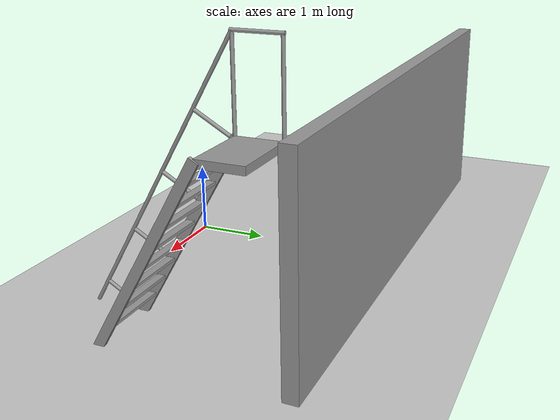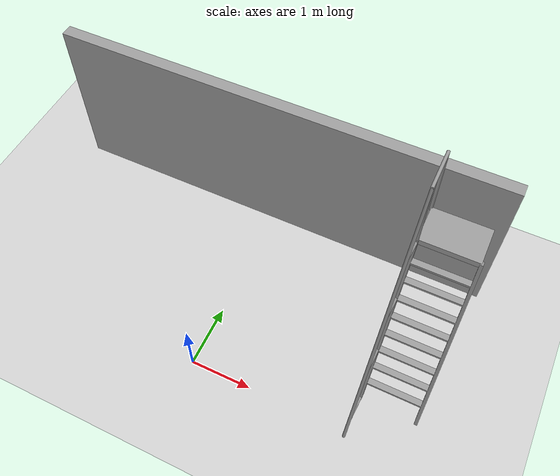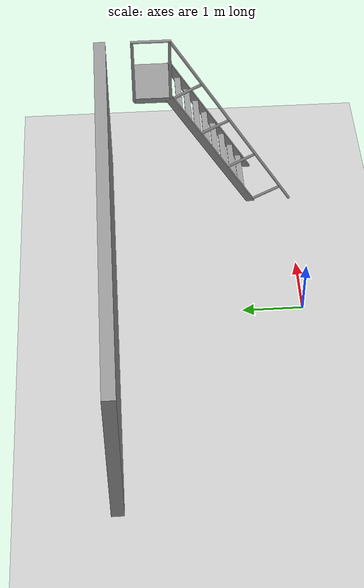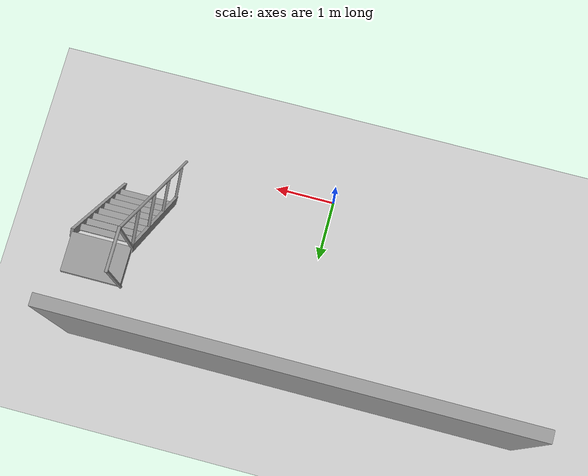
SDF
<sdf version="1.6">
 <world name="default">
  <light name="sun" type="directional">
   <pose>0 0 10 0 -0 0</pose>
   <diffuse>0.8 0.8 0.8 1</diffuse>
   <specular>0.2 0.2 0.2 1</specular>
   <attenuation>
    <range>1000</range>
    <constant>0.9</constant>
    <linear>0.01</linear>
    <quadratic>0.001</quadratic>
   </attenuation>
   <direction>-0.5 0.1 -0.9</direction>
  </light>
  <model name="ground_plane">
   <static>1</static>
   <link name="link">
    <collision name="collision">
     <geometry><plane><normal>0 0 1</normal><size>100 100</size></plane></geometry>
     <surface>
      <contact><collide_bitmask>65535</collide_bitmask></contact>
      <friction><ode><mu>100</mu><mu2>50</mu2></ode></friction>
     </surface>
    </collision>
    <visual name="visual">
     <cast_shadows>0</cast_shadows>
     <geometry><plane><normal>0 0 1</normal><size>100 100</size></plane></geometry>
     <material>
      <script><uri>file://media/materials/scripts/gazebo.material</uri><name>Gazebo/Grey</name></script>
     </material>
    </visual>
   </link>
  </model>
  <gravity>0 0 -9.8</gravity>
  <magnetic_field>6e-06 2.3e-05 -4.2e-05</magnetic_field>
  <atmosphere type="adiabatic"/>
  <physics name="default_physics" default="0" type="ode">
   <max_step_size>0.001</max_step_size>
   <real_time_factor>1</real_time_factor>
   <real_time_update_rate>1000</real_time_update_rate>
  </physics>
  <scene><ambient>0.4 0.4 0.4 1</ambient><background>0.7 0.7 0.7 1</background><shadows>1</shadows></scene>
  <audio><device>default</device></audio>
  <spherical_coordinates>
   <surface_model>EARTH_WGS84</surface_model>
   <latitude_deg>0</latitude_deg>
   <longitude_deg>0</longitude_deg>
   <elevation>0</elevation>
   <heading_deg>0</heading_deg>
  </spherical_coordinates>
  <model name="grey_wall">
   <static>1</static>
   <link name="link">
    <pose>0 0 1.4 0 -0 0</pose>
    <collision name="collision"><geometry><box><size>7.5 0.2 2.8</size></box></geometry></collision>
    <visual name="visual">
     <cast_shadows>0</cast_shadows>
     <geometry><box><size>7.5 0.2 2.8</size></box></geometry>
     <material>
      <script>
       <uri>model://grey_wall/materials/scripts</uri>
       <uri>model://grey_wall/materials/textures</uri>
       <name>vrc/grey_wall</name>
      </script>
     </material>
    </visual>
   </link>
   <pose>-0.061412 3.1632 0 0 -0 0</pose>
  </model>
  <model name="ladder_60deg_1rails">
   <static>1</static>
   <link name="step0">
    <pose>0 0.15396 0.266667 0 -0 0</pose>
    <inertial>
     <mass>9.75482</mass>
     <inertia>
      <ixx>0.00957124</ixx>
      <iyy>0.65963</iyy>
      <izz>0.666842</izz>
      <ixy>0</ixy>
      <ixz>0</ixz>
      <iyz>0</iyz>
     </inertia>
    </inertial>
    <collision name="collision"><geometry><box><size>0.9 0.1016 0.0381</size></box></geometry></collision>
    <visual name="visual">
     <geometry><box><size>0.9 0.1016 0.0381</size></box></geometry>
     <material>
      <script><uri>file://media/materials/scripts/gazebo.material</uri><name>Gazebo/Grey</name></script>
     </material>
    </visual>
   </link>
   <link name="step1">
    <pose>0 0.30792 0.533333 0 -0 0</pose>
    <inertial>
     <mass>9.75482</mass>
     <inertia>
      <ixx>0.00957124</ixx>
      <iyy>0.65963</iyy>
      <izz>0.666842</izz>
      <ixy>0</ixy>
      <ixz>0</ixz>
      <iyz>0</iyz>
     </inertia>
    </inertial>
    <collision name="collision"><geometry><box><size>0.9 0.1016 0.0381</size></box></geometry></collision>
    <visual name="visual">
     <geometry><box><size>0.9 0.1016 0.0381</size></box></geometry>
     <material>
      <script><uri>file://media/materials/scripts/gazebo.material</uri><name>Gazebo/Grey</name></script>
     </material>
    </visual>
   </link>
   <link name="step2">
    <pose>0 0.46188 0.8 0 -0 0</pose>
    <inertial>
     <mass>9.75482</mass>
     <inertia>
      <ixx>0.00957124</ixx>
      <iyy>0.65963</iyy>
      <izz>0.666842</izz>
      <ixy>0</ixy>
      <ixz>0</ixz>
      <iyz>0</iyz>
     </inertia>
    </inertial>
    <collision name="collision"><geometry><box><size>0.9 0.1016 0.0381</size></box></geometry></collision>
    <visual name="visual">
     <geometry><box><size>0.9 0.1016 0.0381</size></box></geometry>
     <material>
      <script><uri>file://media/materials/scripts/gazebo.material</uri><name>Gazebo/Grey</name></script>
     </material>
    </visual>
   </link>
   <link name="step3">
    <pose>0 0.61584 1.06667 0 -0 0</pose>
    <inertial>
     <mass>9.75482</mass>
     <inertia>
      <ixx>0.00957124</ixx>
      <iyy>0.65963</iyy>
      <izz>0.666842</izz>
      <ixy>0</ixy>
      <ixz>0</ixz>
      <iyz>0</iyz>
     </inertia>
    </inertial>
    <collision name="collision"><geometry><box><size>0.9 0.1016 0.0381</size></box></geometry></collision>
    <visual name="visual">
     <geometry><box><size>0.9 0.1016 0.0381</size></box></geometry>
     <material>
      <script><uri>file://media/materials/scripts/gazebo.material</uri><name>Gazebo/Grey</name></script>
     </material>
    </visual>
   </link>
   <link name="step4">
    <pose>0 0.7698 1.33333 0 -0 0</pose>
    <inertial>
     <mass>9.75482</mass>
     <inertia>
      <ixx>0.00957124</ixx>
      <iyy>0.65963</iyy>
      <izz>0.666842</izz>
      <ixy>0</ixy>
      <ixz>0</ixz>
      <iyz>0</iyz>
     </inertia>
    </inertial>
    <collision name="collision"><geometry><box><size>0.9 0.1016 0.0381</size></box></geometry></collision>
    <visual name="visual">
     <geometry><box><size>0.9 0.1016 0.0381</size></box></geometry>
     <material>
      <script><uri>file://media/materials/scripts/gazebo.material</uri><name>Gazebo/Grey</name></script>
     </material>
    </visual>
   </link>
   <link name="step5">
    <pose>0 0.92376 1.6 0 -0 0</pose>
    <inertial>
     <mass>9.75482</mass>
     <inertia>
      <ixx>0.00957124</ixx>
      <iyy>0.65963</iyy>
      <izz>0.666842</izz>
      <ixy>0</ixy>
      <ixz>0</ixz>
      <iyz>0</iyz>
     </inertia>
    </inertial>
    <collision name="collision"><geometry><box><size>0.9 0.1016 0.0381</size></box></geometry></collision>
    <visual name="visual">
     <geometry><box><size>0.9 0.1016 0.0381</size></box></geometry>
     <material>
      <script><uri>file://media/materials/scripts/gazebo.material</uri><name>Gazebo/Grey</name></script>
     </material>
    </visual>
   </link>
   <link name="step6">
    <pose>0 1.07772 1.86667 0 -0 0</pose>
    <inertial>
     <mass>9.75482</mass>
     <inertia>
      <ixx>0.00957124</ixx>
      <iyy>0.65963</iyy>
      <izz>0.666842</izz>
      <ixy>0</ixy>
      <ixz>0</ixz>
      <iyz>0</iyz>
     </inertia>
    </inertial>
    <collision name="collision"><geometry><box><size>0.9 0.1016 0.0381</size></box></geometry></collision>
    <visual name="visual">
     <geometry><box><size>0.9 0.1016 0.0381</size></box></geometry>
     <material>
      <script><uri>file://media/materials/scripts/gazebo.material</uri><name>Gazebo/Grey</name></script>
     </material>
    </visual>
   </link>
   <link name="step7">
    <pose>0 1.23168 2.13333 0 -0 0</pose>
    <inertial>
     <mass>9.75482</mass>
     <inertia>
      <ixx>0.00957124</ixx>
      <iyy>0.65963</iyy>
      <izz>0.666842</izz>
      <ixy>0</ixy>
      <ixz>0</ixz>
      <iyz>0</iyz>
     </inertia>
    </inertial>
    <collision name="collision"><geometry><box><size>0.9 0.1016 0.0381</size></box></geometry></collision>
    <visual name="visual">
     <geometry><box><size>0.9 0.1016 0.0381</size></box></geometry>
     <material>
      <script><uri>file://media/materials/scripts/gazebo.material</uri><name>Gazebo/Grey</name></script>
     </material>
    </visual>
   </link>
   <link name="landing">
    <pose>0 1.68564 2.4 0 -0 0</pose>
    <inertial>
     <mass>57.6072</mass>
     <inertia><ixx>1.73518</ixx><iyy>3.89545</iyy><izz>5.6167</izz><ixy>0</ixy><ixz>0</ixz><iyz>0</iyz></inertia>
    </inertial>
    <collision name="collision"><geometry><box><size>0.9 0.6 0.1016</size></box></geometry></collision>
    <visual name="visual">
     <geometry><box><size>0.9 0.6 0.1016</size></box></geometry>
     <material>
      <script><uri>file://media/materials/scripts/gazebo.material</uri><name>Gazebo/Grey</name></script>
     </material>
    </visual>
   </link>
   <link name="left_side_wall">
    <pose>-0.45 0.69282 1.2 1.0472 -0 0</pose>
    <collision name="collision"><geometry><box><size>0.0508 2.85128 0.13</size></box></geometry></collision>
    <visual name="visual">
     <geometry><box><size>0.0508 2.85128 0.13</size></box></geometry>
     <material>
      <script><uri>file://media/materials/scripts/gazebo.material</uri><name>Gazebo/Grey</name></script>
     </material>
    </visual>
   </link>
   <link name="right_side_wall">
    <pose>0.45 0.69282 1.2 1.0472 -0 0</pose>
    <collision name="collision"><geometry><box><size>0.0508 2.85128 0.13</size></box></geometry></collision>
    <visual name="visual">
     <geometry><box><size>0.0508 2.85128 0.13</size></box></geometry>
     <material>
      <script><uri>file://media/materials/scripts/gazebo.material</uri><name>Gazebo/Grey</name></script>
     </material>
    </visual>
   </link>
   <link name="left_railing_long">
    <pose>-0.45 0.34282 1.80622 -0.523599 0 0</pose>
    <collision name="collision">
     <geometry><cylinder><radius>0.02413</radius><length>4.17128</length></cylinder></geometry>
    </collision>
    <visual name="visual">
     <geometry><cylinder><radius>0.02413</radius><length>4.17128</length></cylinder></geometry>
     <material>
      <script><uri>file://media/materials/scripts/gazebo.material</uri><name>Gazebo/Grey</name></script>
     </material>
    </visual>
   </link>
   <link name="left_railing_upright0">
    <pose>-0.45 -0.274963 0.15875 1.0472 -0 0</pose>
    <collision name="collision">
     <geometry><cylinder><radius>0.02413</radius><length>0.541218</length></cylinder></geometry>
    </collision>
    <visual name="visual">
     <geometry><cylinder><radius>0.02413</radius><length>0.541218</length></cylinder></geometry>
     <material>
      <script><uri>file://media/materials/scripts/gazebo.material</uri><name>Gazebo/Grey</name></script>
     </material>
    </visual>
   </link>
   <link name="left_railing_upright1">
    <pose>-0.45 0.186917 0.95875 1.0472 -0 0</pose>
    <collision name="collision">
     <geometry><cylinder><radius>0.02413</radius><length>0.541218</length></cylinder></geometry>
    </collision>
    <visual name="visual">
     <geometry><cylinder><radius>0.02413</radius><length>0.541218</length></cylinder></geometry>
     <material>
      <script><uri>file://media/materials/scripts/gazebo.material</uri><name>Gazebo/Grey</name></script>
     </material>
    </visual>
   </link>
   <link name="left_railing_upright2">
    <pose>-0.45 0.648797 1.75875 1.0472 -0 0</pose>
    <collision name="collision">
     <geometry><cylinder><radius>0.02413</radius><length>0.541218</length></cylinder></geometry>
    </collision>
    <visual name="visual">
     <geometry><cylinder><radius>0.02413</radius><length>0.541218</length></cylinder></geometry>
     <material>
      <script><uri>file://media/materials/scripts/gazebo.material</uri><name>Gazebo/Grey</name></script>
     </material>
    </visual>
   </link>
   <link name="left_railing_upright3">
    <pose>-0.45 1.11068 2.55875 1.0472 -0 0</pose>
    <collision name="collision">
     <geometry><cylinder><radius>0.02413</radius><length>0.541218</length></cylinder></geometry>
    </collision>
    <visual name="visual">
     <geometry><cylinder><radius>0.02413</radius><length>0.541218</length></cylinder></geometry>
     <material>
      <script><uri>file://media/materials/scripts/gazebo.material</uri><name>Gazebo/Grey</name></script>
     </material>
    </visual>
   </link>
   <link name="left_railing_landing_top">
    <pose>-0.45 1.68564 3.61244 1.5708 -0 0</pose>
    <collision name="collision">
     <geometry><cylinder><radius>0.02413</radius><length>0.64826</length></cylinder></geometry>
    </collision>
    <visual name="visual">
     <geometry><cylinder><radius>0.02413</radius><length>0.64826</length></cylinder></geometry>
     <material>
      <script><uri>file://media/materials/scripts/gazebo.material</uri><name>Gazebo/Grey</name></script>
     </material>
    </visual>
   </link>
   <link name="left_railing_landing_upright_0">
    <pose>-0.45 1.38564 3.00622 0 -0 0</pose>
    <collision name="collision">
     <geometry><cylinder><radius>0.02413</radius><length>1.21244</length></cylinder></geometry>
    </collision>
    <visual name="visual">
     <geometry><cylinder><radius>0.02413</radius><length>1.21244</length></cylinder></geometry>
     <material>
      <script><uri>file://media/materials/scripts/gazebo.material</uri><name>Gazebo/Grey</name></script>
     </material>
    </visual>
   </link>
   <link name="left_railing_landing_upright_1">
    <pose>-0.45 1.98564 3.00622 0 -0 0</pose>
    <collision name="collision">
     <geometry><cylinder><radius>0.02413</radius><length>1.21244</length></cylinder></geometry>
    </collision>
    <visual name="visual">
     <geometry><cylinder><radius>0.02413</radius><length>1.21244</length></cylinder></geometry>
     <material>
      <script><uri>file://media/materials/scripts/gazebo.material</uri><name>Gazebo/Grey</name></script>
     </material>
    </visual>
   </link>
   <pose>3.04448 0.636565 0 0 -0 0</pose>
  </model>
 </world>
</sdf>
